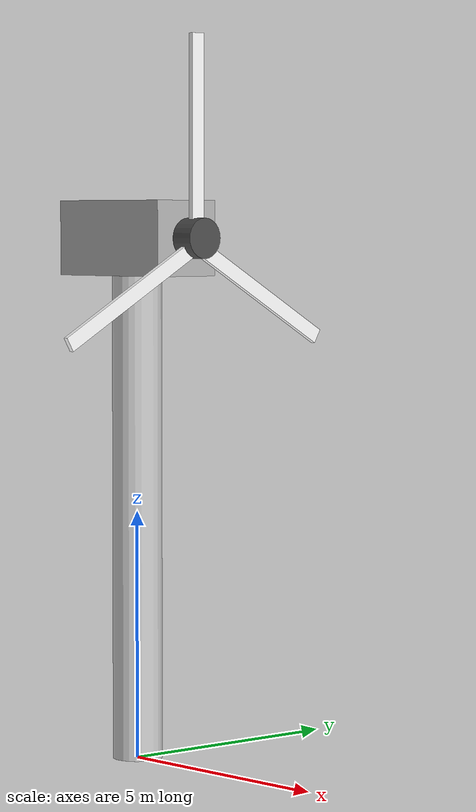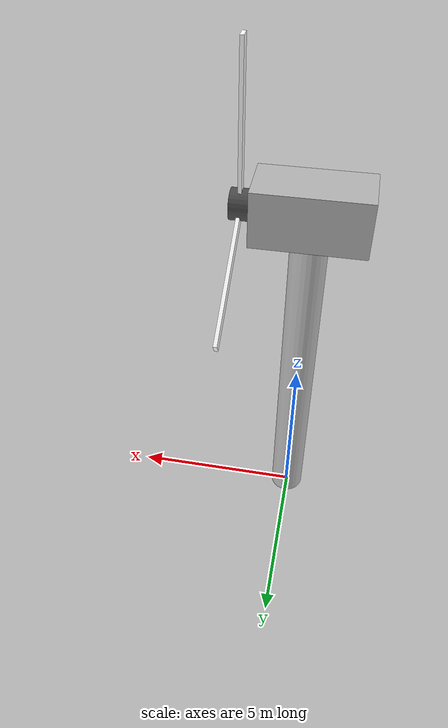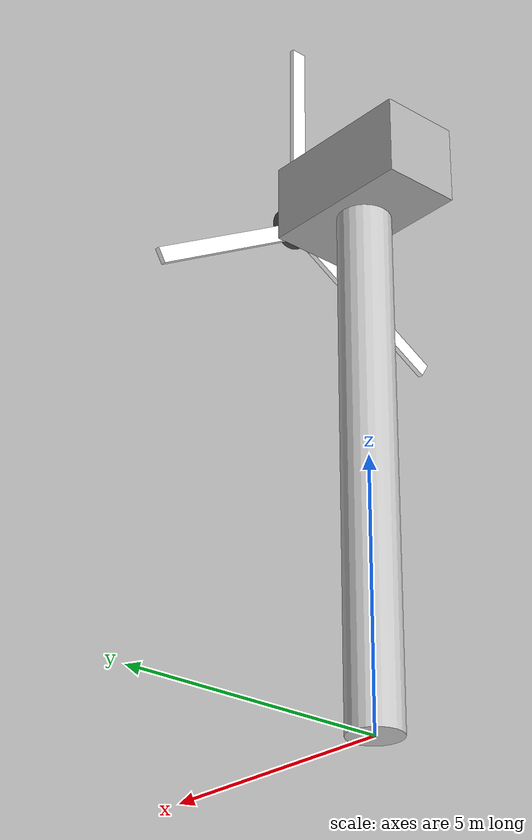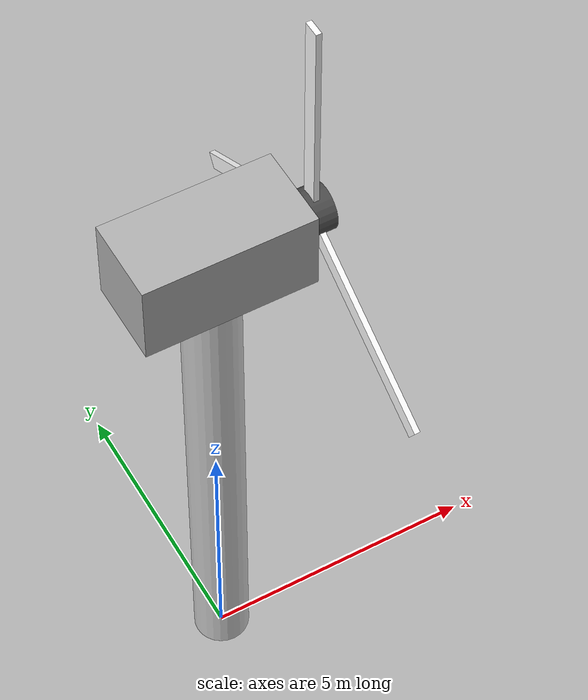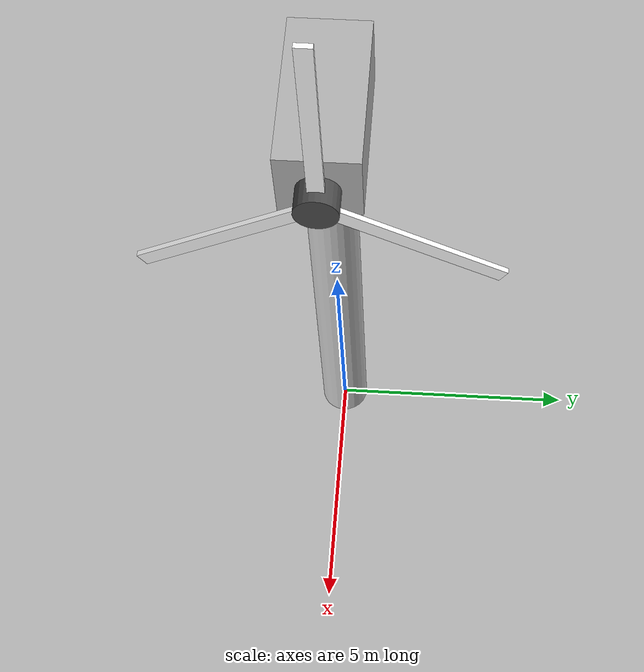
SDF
<?xml version="1.0"?>
<sdf version="1.9">
  <model name="wind_turbine">
    <pose>0 0 0 0 0 0</pose>
    <static>false</static>

    <!-- Base/Torre -->
    <link name="tower">
      <pose>0 0 5 0 0 0</pose>
      <inertial>
        <mass>1000</mass>
        <inertia>
          <ixx>833.33</ixx>
          <iyy>833.33</iyy>
          <izz>10</izz>
          <ixy>0</ixy>
          <ixz>0</ixz>
          <iyz>0</iyz>
        </inertia>
      </inertial>
      <collision name="tower_collision">
        <geometry>
          <cylinder>
            <radius>0.5</radius>
            <length>10</length>
          </cylinder>
        </geometry>
      </collision>
      <visual name="tower_visual">
        <geometry>
          <cylinder>
            <radius>0.5</radius>
            <length>10</length>
          </cylinder>
        </geometry>
        <material>
          <ambient>0.8 0.8 0.8 1</ambient>
          <diffuse>0.8 0.8 0.8 1</diffuse>
        </material>
      </visual>
    </link>

    <!-- Góndola (nacelle) -->
    <link name="nacelle">
      <pose>0 0 10.5 0 0 0</pose>
      <inertial>
        <mass>100</mass>
        <inertia>
          <ixx>8.33</ixx>
          <iyy>8.33</iyy>
          <izz>8.33</izz>
          <ixy>0</ixy>
          <ixz>0</ixz>
          <iyz>0</iyz>
        </inertia>
      </inertial>
      <collision name="nacelle_collision">
        <geometry>
          <box>
            <size>3 1.5 1.5</size>
          </box>
        </geometry>
      </collision>
      <visual name="nacelle_visual">
        <geometry>
          <box>
            <size>3 1.5 1.5</size>
          </box>
        </geometry>
        <material>
          <ambient>0.7 0.7 0.7 1</ambient>
          <diffuse>0.7 0.7 0.7 1</diffuse>
        </material>
      </visual>
    </link>

    <!-- Hub central (centro de las aspas) -->
    <link name="hub">
      <pose>1.8 0 10.5 0 1.5708 0</pose>
      <inertial>
        <mass>50</mass>
        <inertia>
          <ixx>2.08</ixx>
          <iyy>2.08</iyy>
          <izz>2.08</izz>
          <ixy>0</ixy>
          <ixz>0</ixz>
          <iyz>0</iyz>
        </inertia>
      </inertial>
      <collision name="hub_collision">
        <geometry>
          <cylinder>
            <radius>0.4</radius>
            <length>0.5</length>
          </cylinder>
        </geometry>
      </collision>
      <visual name="hub_visual">
        <geometry>
          <cylinder>
            <radius>0.4</radius>
            <length>0.5</length>
          </cylinder>
        </geometry>
        <material>
          <ambient>0.3 0.3 0.3 1</ambient>
          <diffuse>0.3 0.3 0.3 1</diffuse>
        </material>
      </visual>
    </link>

    <!-- Aspa 1 (0 grados) -->
    <link name="blade_1">
      <pose>1.8 0 10.5 0 0 0</pose>
      <inertial>
        <pose>2 0 0 0 0 0</pose>
        <mass>20</mass>
        <inertia>
          <ixx>0.2</ixx>
          <iyy>13.33</iyy>
          <izz>13.33</izz>
          <ixy>0</ixy>
          <ixz>0</ixz>
          <iyz>0</iyz>
        </inertia>
      </inertial>
      <collision name="blade_1_collision">
        <pose>0 0 2 0 0 0</pose>
        <geometry>
          <box>
            <size>0.1 0.3 4.0</size>
          </box>
        </geometry>
      </collision>
      <visual name="blade_1_visual">
        <pose>0 0 2 0 0 0</pose>
        <geometry>
          <box>
            <size>0.1 0.3 4.0</size>
          </box>
        </geometry>
        <material>
          <ambient>1 1 1 1</ambient>
          <diffuse>1 1 1 1</diffuse>
        </material>
      </visual>
    </link>

    <!-- Aspa 2 (120 grados) -->
    <link name="blade_2">
      <pose>1.8 0 10.5 0 0 0</pose>
      <inertial>
        <pose>2 0 0 0 0 0</pose>
        <mass>20</mass>
        <inertia>
          <ixx>0.2</ixx>
          <iyy>13.33</iyy>
          <izz>13.33</izz>
          <ixy>0</ixy>
          <ixz>0</ixz>
          <iyz>0</iyz>
        </inertia>
      </inertial>
      <collision name="blade_2_collision">
        <pose>0 -1.5 -1.0 2.0944 0  0 </pose>
        <geometry>
          <box>
            <size>0.1 0.3 4.0</size>
          </box>
        </geometry>
      </collision>
      <visual name="blade_2_visual">
        <pose>0 -1.5 -1.0 2.0944 0  0 </pose>
        <geometry>
          <box>
            <size>0.1 0.3 4.0</size>
          </box>
        </geometry>
        <material>
          <ambient>1 1 1 1</ambient>
          <diffuse>1 1 1 1</diffuse>
        </material>
      </visual>
    </link>

    <!-- Aspa 3 (240 grados) -->
    <link name="blade_3">
      <pose>1.8 0 10.5  0 0 0</pose>
      <inertial>
        <pose>2 0 0 0 0 0</pose>
        <mass>20</mass>
        <inertia>
          <ixx>0.2</ixx>
          <iyy>13.33</iyy>
          <izz>13.33</izz>
          <ixy>0</ixy>
          <ixz>0</ixz>
          <iyz>0</iyz>
        </inertia>
      </inertial>
      <collision name="blade_3_collision">
        <pose>0 1.5 -1.0 4.1888 0  0 </pose>
        <geometry>
          <box>
            <size>0.1 0.3 4.0</size>
          </box>
        </geometry>
      </collision>
      <visual name="blade_3_visual">
        <pose>0 1.5 -1.0 4.1888  0 0</pose>
        <geometry>
          <box>
            <size>0.1 0.3 4.0</size>
          </box>
        </geometry>
        <material>
          <ambient>1 1 1 1</ambient>
          <diffuse>1 1 1 1</diffuse>
        </material>
      </visual>
    </link>

    <!-- Joint: Torre fija al mundo -->
    <joint name="tower_fixed" type="fixed">
      <parent>world</parent>
      <child>tower</child>
    </joint>

    <!-- Joint: Góndola con rotación yaw (orientación al viento) -->
    <joint name="nacelle_yaw_joint" type="revolute">
      <parent>tower</parent>
      <child>nacelle</child>
      <axis>
        <xyz>0 0 1</xyz>
        <limit>
          <lower>-1e16</lower>
          <upper>1e16</upper>
        </limit>
        <dynamics>
          <damping>0.5</damping>
          <friction>0.1</friction>
        </dynamics>
      </axis>
    </joint>

    <!-- Joint: Hub giratorio conectado a la góndola -->
    <joint name="rotor_joint" type="revolute">
      <parent>nacelle</parent>
      <child>hub</child>
      <axis>
        <xyz>0 0 1</xyz>
        <limit>
          <lower>-1e16</lower>
          <upper>1e16</upper>
        </limit>
      </axis>
    </joint>

    <!-- Aspas fijas al hub (separadas 120 grados) -->
    <joint name="blade_1_joint" type="fixed">
      <parent>hub</parent>
      <child>blade_1</child>
    </joint>

    <joint name="blade_2_joint" type="fixed">
      <parent>hub</parent>
      <child>blade_2</child>
    </joint>

    <joint name="blade_3_joint" type="fixed">
      <parent>hub</parent>
      <child>blade_3</child>
    </joint>

    <!-- Plugin para aplicar velocidad constante al rotor -->
    <plugin
      filename="gz-sim-joint-controller-system"
      name="gz::sim::systems::JointController">
      <topic>/model/wind_turbine/rotor_speed_cmd</topic>
      <joint_name>rotor_joint</joint_name>
      <use_velocity_commands>true</use_velocity_commands>
      <initial_velocity>1.0</initial_velocity>
    </plugin>

    <!-- Plugin de servo para control de posición de la góndola (yaw) -->
    <plugin
      filename="gz-sim-joint-position-controller-system"
      name="gz::sim::systems::JointPositionController">
      <joint_name>nacelle_yaw_joint</joint_name>
      <topic>/model/wind_turbine/gondola_yaw_cmd</topic>
      <p_gain>10.0</p_gain>
      <i_gain>0.1</i_gain>
      <d_gain>0.5</d_gain>
      <i_max>1.0</i_max>
      <i_min>-1.0</i_min>
      <cmd_max>100</cmd_max>
      <cmd_min>-100</cmd_min>
    </plugin>

  </model>
</sdf>
